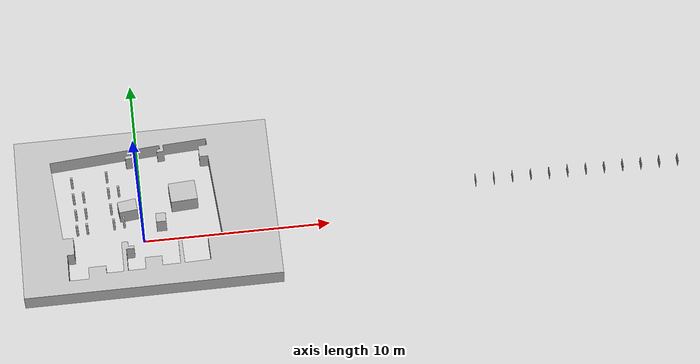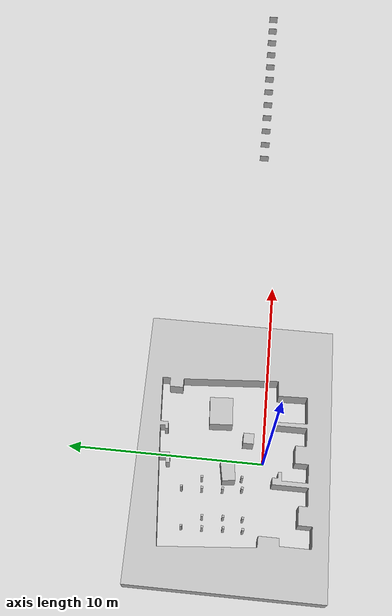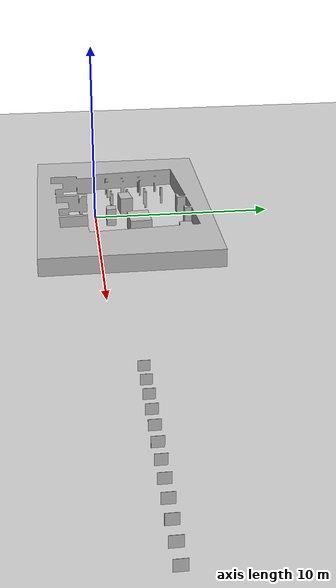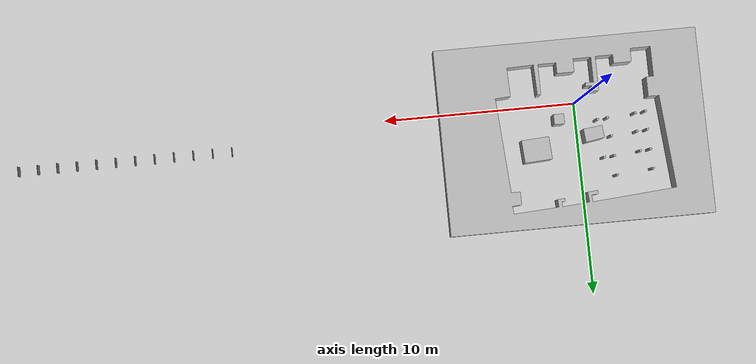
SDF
<sdf version="1.4">
 <world name="default">
  <include><uri>model://ground_plane</uri></include>
  <include><uri>model://sun</uri></include>
  <include><uri>file://models/map_inspire_lab_20180929</uri></include>
  <include><pose>18 1 1 0 0 0</pose><uri>model://marker18</uri></include>
  <include><pose>19 1 1 0 0 0</pose><uri>model://marker19</uri></include>
  <include><pose>20 1 1 0 0 0</pose><uri>model://marker20</uri></include>
  <include><pose>21 1 1 0 0 0</pose><uri>model://marker21</uri></include>
  <include><pose>22 1 1 0 0 0</pose><uri>model://marker22</uri></include>
  <include><pose>23 1 1 0 0 0</pose><uri>model://marker23</uri></include>
  <include><pose>24 1 1 0 0 0</pose><uri>model://marker24</uri></include>
  <include><pose>25 1 1 0 0 0</pose><uri>model://marker25</uri></include>
  <include><pose>26 1 1 0 0 0</pose><uri>model://marker26</uri></include>
  <include><pose>27 1 1 0 0 0</pose><uri>model://marker27</uri></include>
  <include><pose>28 1 1 0 0 0</pose><uri>model://marker28</uri></include>
  <include><pose>29 1 1 0 0 0</pose><uri>model://marker29</uri></include>
 </world>
</sdf>

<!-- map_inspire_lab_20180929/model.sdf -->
<sdf version="1.4">
<model name="map_inspire_lab_20180929">
  <pose>-0.025 -0.025 0.5 0 0 0</pose>
  <static>true</static>
    <link name="link">
      <collision name="collision">
        <geometry>
          <mesh><uri>file://models/map_inspire_lab_20180929/model.stl</uri></mesh>
        </geometry>
      </collision>
      <visual name="visual">
        <geometry>
          <mesh><uri>file://models/map_inspire_lab_20180929/model.stl</uri></mesh>
        </geometry>
      </visual>
    </link>
  </model>
</sdf>

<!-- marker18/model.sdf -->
<sdf version="1.6">
  <model name="Marker18">
    <static>true</static>
    <link name="link">
      <visual name="visual">
        <geometry>
          <mesh>
            <uri>file:////home/vagrant/catkin_ws/src/cp3_base/models//marker18/marker18/meshes/Marker18.dae</uri>
          </mesh>
        </geometry>
      </visual>
    </link>
  </model>
</sdf>

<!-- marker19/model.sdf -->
<sdf version="1.6">
  <model name="Marker19">
    <static>true</static>
    <link name="link">
      <visual name="visual">
        <geometry>
          <mesh>
            <uri>file:////home/vagrant/catkin_ws/src/cp3_base/models//marker19/marker19/meshes/Marker19.dae</uri>
          </mesh>
        </geometry>
      </visual>
    </link>
  </model>
</sdf>

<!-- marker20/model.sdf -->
<sdf version="1.6">
  <model name="Marker20">
    <static>true</static>
    <link name="link">
      <visual name="visual">
        <geometry>
          <mesh>
            <uri>file:////home/vagrant/catkin_ws/src/cp3_base/models//marker20/marker20/meshes/Marker20.dae</uri>
          </mesh>
        </geometry>
      </visual>
    </link>
  </model>
</sdf>

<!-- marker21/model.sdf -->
<sdf version="1.6">
  <model name="Marker21">
    <static>true</static>
    <link name="link">
      <visual name="visual">
        <geometry>
          <mesh>
            <uri>file:////home/vagrant/catkin_ws/src/cp3_base/models//marker21/marker21/meshes/Marker21.dae</uri>
          </mesh>
        </geometry>
      </visual>
    </link>
  </model>
</sdf>

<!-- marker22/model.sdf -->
<sdf version="1.6">
  <model name="Marker22">
    <static>true</static>
    <link name="link">
      <visual name="visual">
        <geometry>
          <mesh>
            <uri>file:////home/vagrant/catkin_ws/src/cp3_base/models//marker22/marker22/meshes/Marker22.dae</uri>
          </mesh>
        </geometry>
      </visual>
    </link>
  </model>
</sdf>

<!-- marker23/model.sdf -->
<sdf version="1.6">
  <model name="Marker23">
    <static>true</static>
    <link name="link">
      <visual name="visual">
        <geometry>
          <mesh>
            <uri>file:////home/vagrant/catkin_ws/src/cp3_base/models//marker23/marker23/meshes/Marker23.dae</uri>
          </mesh>
        </geometry>
      </visual>
    </link>
  </model>
</sdf>

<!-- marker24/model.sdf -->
<sdf version="1.6">
  <model name="Marker24">
    <static>true</static>
    <link name="link">
      <visual name="visual">
        <geometry>
          <mesh>
            <uri>file:////home/vagrant/catkin_ws/src/cp3_base/models//marker24/marker24/meshes/Marker24.dae</uri>
          </mesh>
        </geometry>
      </visual>
    </link>
  </model>
</sdf>

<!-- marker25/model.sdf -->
<sdf version="1.6">
  <model name="Marker25">
    <static>true</static>
    <link name="link">
      <visual name="visual">
        <geometry>
          <mesh>
            <uri>file:////home/vagrant/catkin_ws/src/cp3_base/models//marker25/marker25/meshes/Marker25.dae</uri>
          </mesh>
        </geometry>
      </visual>
    </link>
  </model>
</sdf>

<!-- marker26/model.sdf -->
<sdf version="1.6">
  <model name="Marker26">
    <static>true</static>
    <link name="link">
      <visual name="visual">
        <geometry>
          <mesh>
            <uri>file:////home/vagrant/catkin_ws/src/cp3_base/models//marker26/marker26/meshes/Marker26.dae</uri>
          </mesh>
        </geometry>
      </visual>
    </link>
  </model>
</sdf>

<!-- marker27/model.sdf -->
<sdf version="1.6">
  <model name="Marker27">
    <static>true</static>
    <link name="link">
      <visual name="visual">
        <geometry>
          <mesh>
            <uri>file:////home/vagrant/catkin_ws/src/cp3_base/models//marker27/marker27/meshes/Marker27.dae</uri>
          </mesh>
        </geometry>
      </visual>
    </link>
  </model>
</sdf>

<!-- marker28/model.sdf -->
<sdf version="1.6">
  <model name="Marker28">
    <static>true</static>
    <link name="link">
      <visual name="visual">
        <geometry>
          <mesh>
            <uri>file:////home/vagrant/catkin_ws/src/cp3_base/models//marker28/marker28/meshes/Marker28.dae</uri>
          </mesh>
        </geometry>
      </visual>
    </link>
  </model>
</sdf>

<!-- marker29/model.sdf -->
<sdf version="1.6">
  <model name="Marker29">
    <static>true</static>
    <link name="link">
      <visual name="visual">
        <geometry>
          <mesh>
            <uri>file:////home/vagrant/catkin_ws/src/cp3_base/models//marker29/marker29/meshes/Marker29.dae</uri>
          </mesh>
        </geometry>
      </visual>
    </link>
  </model>
</sdf>
